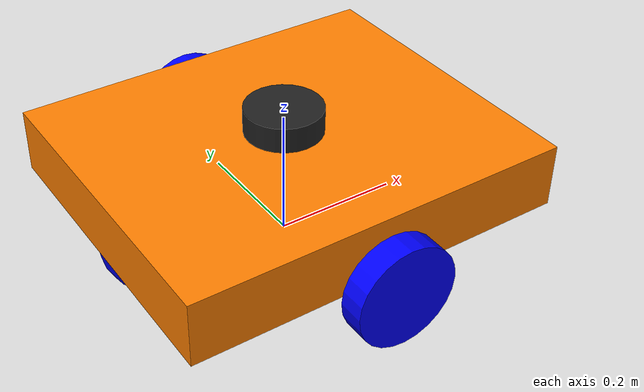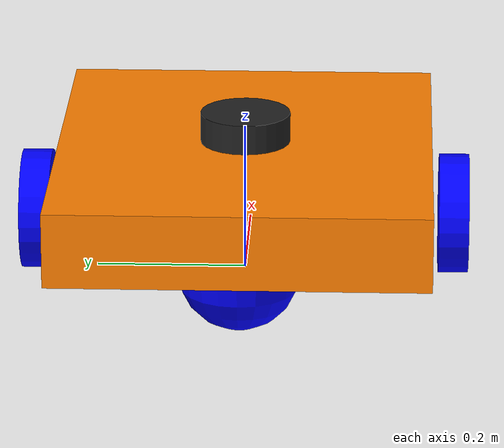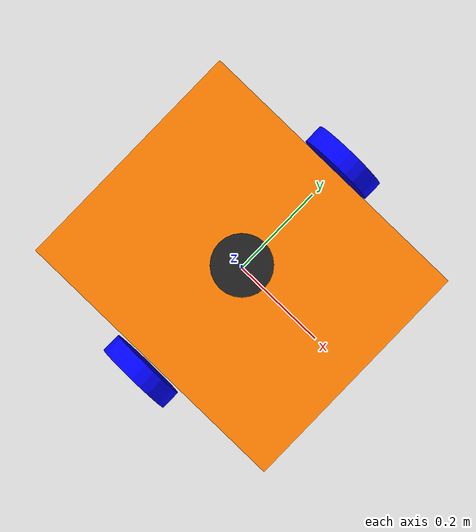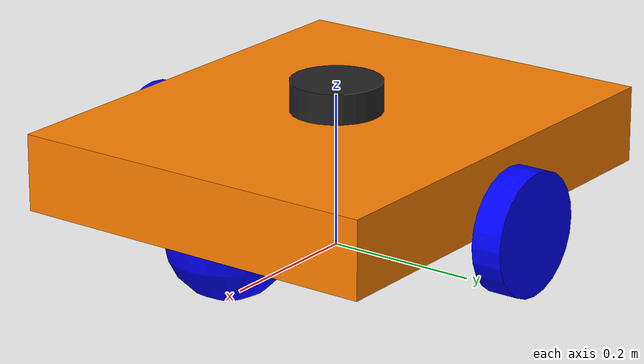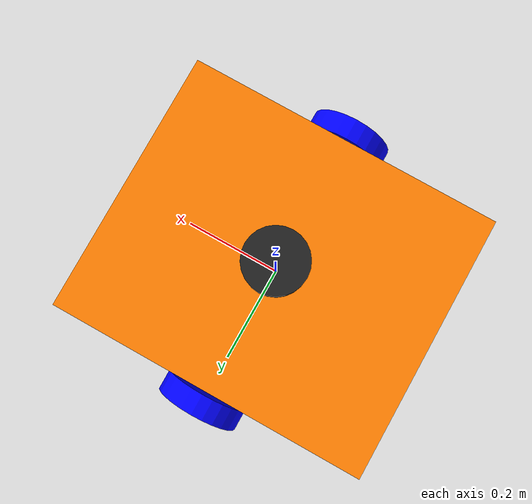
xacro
<?xml version="1.0"?>
<robot xmlns:xacro="http://www.ros.org/wiki/xacro" name="diff_drive">

    <xacro:include filename="robot.gazebo.xacro" />
    <xacro:include filename="robot_core.urdf.xacro" />

</robot>

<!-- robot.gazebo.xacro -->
<robot xmlns:xacro="http://www.ros.org/wiki/xacro">

    <xacro:include filename="xacros/robot_paras.xacro" />

    <gazebo>
        <plugin filename="gz-sim-diff-drive-system" name="gz::sim::systems::DiffDrive">
            <right_joint>body_to_rw</right_joint>
            <left_joint>body_to_lw</left_joint>

            <wheel_separation>${body_box_size_x + wheel_length + wheel_offset}</wheel_separation>
            <wheel_radius>${wheel_radius}</wheel_radius>

            <max_velocity>4</max_velocity>
            <max_linear_acceleration>10</max_linear_acceleration>

            <topic>cmd_vel</topic>
        </plugin>

        <plugin
            filename="gz-sim-odometry-publisher-system"
            name="gz::sim::systems::OdometryPublisher">
            <odom_frame>odom</odom_frame>
            <robot_base_frame>base_link</robot_base_frame>
            <odom_publish_frequency>50</odom_publish_frequency>
            <odom_topic>/odom</odom_topic>
            <tf_topic>/tf</tf_topic>
            <dimensions>2</dimensions>
        </plugin>

        <plugin filename="gz-sim-joint-state-publisher-system"
            name="gz::sim::systems::JointStatePublisher">
            <topic>joint_states</topic>
            <joint_name>body_to_rw</joint_name>
            <joint_name>body_to_lw</joint_name>
        </plugin>
    </gazebo>

    <gazebo reference="imu_link">
        <sensor name="imu" type="imu">
            <always_on>true</always_on>
            <update_rate>200</update_rate>
            <visualize>true</visualize>
            <topic>imu</topic>
            <enable_metrics>true</enable_metrics>
            <gz_frame_id>imu_link</gz_frame_id>
        </sensor>
    </gazebo>

    <gazebo reference="lidar_frame">
        <sensor name="lidar" type="gpu_lidar">
            <pose relative_to="lidar_frame">0 0 0 0 0 0</pose>
            <always_on>true</always_on>
            <visualize>true</visualize>
            <update_rate>5</update_rate>
            <topic>scan</topic>
            <gz_frame_id>lidar_frame</gz_frame_id>

            <ray>
                <scan>
                    <horizontal>
                        <samples>720</samples>
                        <resolution>1</resolution>
                        <min_angle>-3.14</min_angle>
                        <max_angle>3.14</max_angle>
                    </horizontal>
                </scan>

                <range>
                    <min>0.05</min>
                    <max>10.0</max>
                    <resolution>0.01</resolution>
                </range>

                <noise>
                    <type>gaussian</type>
                    <mean>0.0</mean>
                    <stddev>0.01</stddev>
                </noise>
            </ray>
        </sensor>
    </gazebo>

</robot>

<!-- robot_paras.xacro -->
<robot xmlns:xacro="http://www.ros.org/wiki/xacro">

    <xacro:property name="wheel_offset" value="0.01" />

    <!-- body link -->
    <xacro:property name="body_box_size_x" value="0.5" />
    <xacro:property name="body_box_size_y" value="0.6" />
    <xacro:property name="body_box_size_z" value="0.1" />

    <!-- Wheel -->
    <xacro:property name="wheel_radius" value="0.08" />
    <xacro:property name="wheel_length" value="0.04" />

    <!-- Lidar -->
    <xacro:property name="lidar_radius" value="0.06" />
    <xacro:property name="lidar_length" value="0.04" />

</robot>

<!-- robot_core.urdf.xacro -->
<robot xmlns:xacro="http://www.ros.org/wiki/xacro" name="diff_drive">

    <xacro:include filename="xacros/robot_paras.xacro" />
    <xacro:include filename="xacros/colors.xacro" />
    <xacro:include filename="xacros/inertial_macros.xacro" />

    <link name="base_link">
    </link>

    <joint name="base_to_body" type="fixed">
        <parent link="base_link" />
        <child link="body_link" />
        <origin xyz="0 0 ${body_box_size_z/2 + wheel_radius}" rpy="0 0 ${-pi/2}" />
        <axis xyz="0 0 0" />
    </joint>

    <link name="body_link">
        <xacro:inertial_box mass="0.3" x="${body_box_size_x}" y="${body_box_size_y}"
            z="${body_box_size_z}">
            <origin xyz="0 0 0" rpy="0 0 0" />
        </xacro:inertial_box>
        <visual>
            <geometry>
                <box size="${body_box_size_x} ${body_box_size_y} ${body_box_size_z}" />
            </geometry>
            <material name="orange" />
            <origin xyz="0 0 0" rpy="0 0 0" />
        </visual>
        <collision>
            <geometry>
                <box size="${body_box_size_x} ${body_box_size_y} ${body_box_size_z}" />
            </geometry>
            <origin xyz="0 0 ${body_box_size_z/2}" rpy="0 0 0" />
        </collision>
    </link>

    <joint name="body_to_lw" type="continuous">
        <parent link="body_link" />
        <child link="left_wheel_link" />
        <origin
            xyz="${-body_box_size_x/2 - wheel_length/2 - wheel_offset} ${body_box_size_y/2*0} ${-body_box_size_z/2}"
            rpy="0 ${-pi/2} 0" />
        <axis xyz="0 0 1" />
    </joint>

    <link name="left_wheel_link">
        <xacro:inertial_cylinder mass="0.5" length="${wheel_length}" radius="${wheel_radius}">
            <origin xyz="0 0 0" rpy="0 0 0" />
        </xacro:inertial_cylinder>
        <visual>
            <geometry>
                <cylinder radius="${wheel_radius}" length="${wheel_length}" />
            </geometry>
            <material name="blue" />
            <origin xyz="0 0 0" rpy="0 0 0" />
        </visual>
        <collision>
            <geometry>
                <cylinder radius="${wheel_radius}" length="${wheel_length}" />
            </geometry>
            <origin xyz="0 0 0" rpy="0 0 0" />
        </collision>
    </link>

    <joint name="body_to_rw" type="continuous">
        <parent link="body_link" />
        <child link="right_wheel_link" />
        <origin
            xyz="${body_box_size_x/2 + wheel_length/2 + wheel_offset} ${body_box_size_y/2*0} ${-body_box_size_z/2}"
            rpy="0 ${-pi/2} 0" />
        <axis xyz="0 0 1" />
    </joint>

    <link name="right_wheel_link">
        <xacro:inertial_cylinder mass="0.5" length="${wheel_length}" radius="${wheel_radius}">
            <origin xyz="0 0 0" rpy="0 0 0" />
        </xacro:inertial_cylinder>
        <visual>
            <geometry>
                <cylinder radius="${wheel_radius}" length="${wheel_length}" />
            </geometry>
            <material name="blue" />
            <origin xyz="0 0 0" rpy="0 0 0" />
        </visual>
        <collision>
            <geometry>
                <cylinder radius="${wheel_radius}" length="${wheel_length}" />
            </geometry>
            <origin xyz="0 0 0" rpy="0 0 0" />
        </collision>
    </link>

    <joint name="body_to_caster_wheel_link" type="fixed">
        <parent link="body_link" />
        <child link="caster_wheel_link" />
        <origin xyz="0 ${-body_box_size_y/2 + wheel_radius} ${-body_box_size_z/2}" rpy="0 0 0" />
        <axis xyz="0 0 0" />
    </joint>

    <link name="caster_wheel_link">
        <xacro:inertial_sphere mass="0.1" radius="${wheel_radius}">
            <origin xyz="0 0 0" rpy="0 0 0" />
        </xacro:inertial_sphere>
        <visual>
            <geometry>
                <sphere radius="${wheel_radius}" />
            </geometry>
            <material name="blue" />
            <origin xyz="0 0 0" rpy="0 0 0" />
        </visual>
        <collision>
            <geometry>
                <sphere radius="${wheel_radius}" />
            </geometry>
            <origin xyz="0 0 0" rpy="0 0 0" />
        </collision>
    </link>

    <joint name="body_to_caster_wheel_link2" type="fixed">
        <parent link="body_link" />
        <child link="caster_wheel_link2" />
        <origin xyz="0 ${+body_box_size_y/2 - wheel_radius} ${-body_box_size_z/2}" rpy="0 0 0" />
        <axis xyz="0 0 0" />
    </joint>

    <link name="caster_wheel_link2">
        <xacro:inertial_sphere mass="0.1" radius="${wheel_radius}">
            <origin xyz="0 0 0" rpy="0 0 0" />
        </xacro:inertial_sphere>
        <visual>
            <geometry>
                <sphere radius="${wheel_radius}" />
            </geometry>
            <material name="blue" />
            <origin xyz="0 0 0" rpy="0 0 0" />
        </visual>
        <collision>
            <geometry>
                <sphere radius="${wheel_radius}" />
            </geometry>
            <origin xyz="0 0 0" rpy="0 0 0" />
        </collision>
    </link>

    <!-- Lidar Sensor -->
    <joint name="lidar_joint" type="fixed">
        <parent link="body_link" />
        <child link="lidar_frame" />
        <origin xyz="0 0 ${body_box_size_z/2+lidar_length/2}" rpy="0 0 0" />
    </joint>

    <link name="lidar_frame">
        <visual>
            <origin xyz="0 0 0" />
            <geometry>
                <cylinder length="${lidar_length}" radius="${lidar_radius}" />
            </geometry>
            <material name="laser_material">
                <color rgba="0.13 0.13 0.13 1.0" />
            </material>
        </visual>
        <collision>
            <origin xyz="0 0 0" />
            <geometry>
                <cylinder length="${lidar_length}" radius="${lidar_radius}" />
            </geometry>
        </collision>
        <xacro:inertial_cylinder mass="0.1" length="${lidar_length}" radius="${lidar_radius}">
            <origin xyz="0 0 0" rpy="0 0 0" />
        </xacro:inertial_cylinder>
    </link>

    <!-- IMU Sensor -->
    <joint name="imu_joint" type="fixed">
        <origin xyz="0 0 0" rpy="0 0 0" />
        <parent link="base_link" />
        <child link="imu_link" />
    </joint>

    <link name="imu_link" />

    <gazebo reference="left_wheel_link">
        <mu1>1.0</mu1>
        <mu2>1.0</mu2>
    </gazebo>

    <gazebo reference="right_wheel_link">
        <mu1>1.0</mu1>
        <mu2>1.0</mu2>
    </gazebo>

    <gazebo reference="caster_wheel_link">
        <mu1>0.001</mu1>
        <mu2>0.001</mu2>
    </gazebo>

    <gazebo reference="caster_wheel_link2">
        <mu1>0.001</mu1>
        <mu2>0.001</mu2>
    </gazebo>

    <gazebo reference="ground_plane">
        <mu1>100</mu1>
        <mu2>100</mu2>
    </gazebo>

</robot>

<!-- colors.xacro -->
<robot xmlns:xacro="http://www.ros.org/wiki/xacro">

    <material name="red">
        <color rgba="1 0 0 1"/>
    </material>
    <material name="green">
        <color rgba="0 1 0 1"/>
    </material>
    <material name="blue">
        <color rgba="0 0 1 1"/>
    </material>
    <material name="yellow">
        <color rgba="1 1 0 1"/>
    </material>
    <material name="white">
        <color rgba="1 1 1 1"/>
    </material>
    <material name="black">
        <color rgba="0 0 0 1"/>
    </material>
    <material name="orange">
        <color rgba="1 0.5 0 1"/>
    </material>
    <material name="pink">
        <color rgba="1 0 1 1"/>
    </material>
    <material name="cyan">
        <color rgba="0 1 1 1"/>
    </material>
    <material name="gray">
        <color rgba="0.5 0.5 0.5 1"/>
    </material>
</robot>
